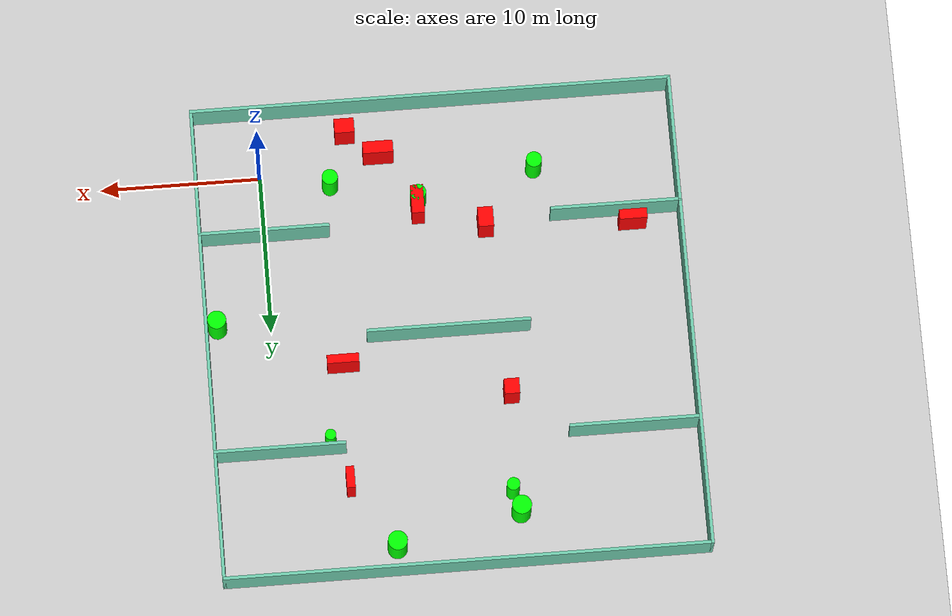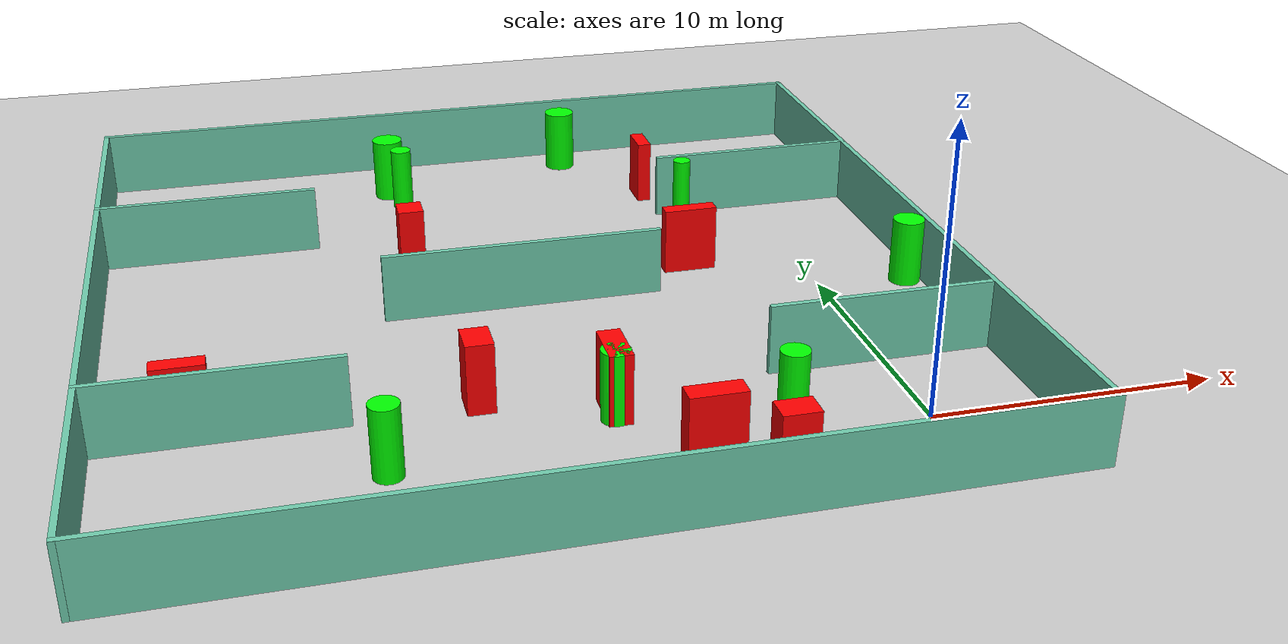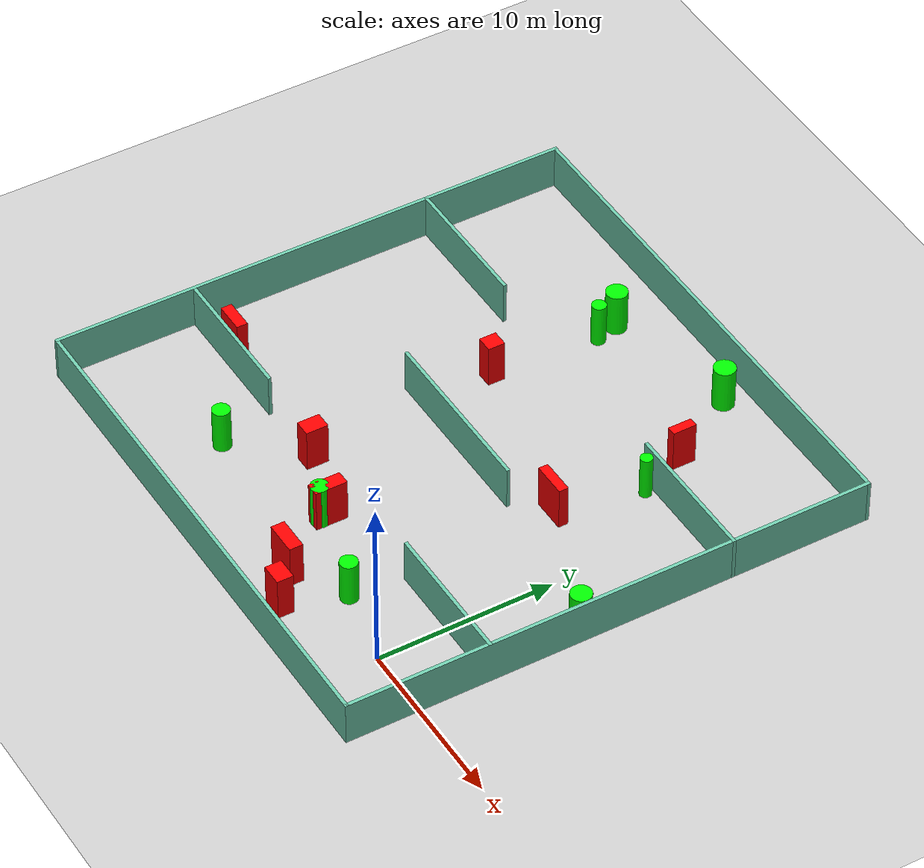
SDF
<sdf version="1.7">
 <world name="default">
  <light name="sun" type="directional">
   <pose>0 0 10 0 -0 0</pose>
   <diffuse>0.8 0.8 0.8 1</diffuse>
   <specular>0.2 0.2 0.2 1</specular>
   <attenuation>
    <range>1000</range>
    <constant>0.9</constant>
    <linear>0.01</linear>
    <quadratic>0.001</quadratic>
   </attenuation>
   <direction>-0.5 0.1 -0.9</direction>
   <spot><inner_angle>0</inner_angle><outer_angle>0</outer_angle><falloff>0</falloff></spot>
  </light>
  <model name="ground_plane">
   <static>1</static>
   <link name="link">
    <collision name="collision">
     <geometry><plane><normal>0 0 1</normal><size>100 100</size></plane></geometry>
     <surface>
      <contact><collide_bitmask>65535</collide_bitmask></contact>
      <friction><ode><mu>100</mu><mu2>50</mu2></ode></friction>
     </surface>
    </collision>
    <visual name="visual">
     <cast_shadows>0</cast_shadows>
     <geometry><plane><normal>0 0 1</normal><size>100 100</size></plane></geometry>
     <material>
      <script><uri>file://media/materials/scripts/gazebo.material</uri><name>Gazebo/Grey</name></script>
     </material>
    </visual>
   </link>
  </model>
  <gravity>0 0 -9.8</gravity>
  <magnetic_field>6e-06 2.3e-05 -4.2e-05</magnetic_field>
  <atmosphere type="adiabatic"/>
  <physics type="ode">
   <max_step_size>0.001</max_step_size>
   <real_time_factor>1</real_time_factor>
   <real_time_update_rate>1000</real_time_update_rate>
  </physics>
  <scene><ambient>0.4 0.4 0.4 1</ambient><background>0.7 0.7 0.7 1</background><shadows>1</shadows></scene>
  <spherical_coordinates>
   <surface_model>EARTH_WGS84</surface_model>
   <latitude_deg>0</latitude_deg>
   <longitude_deg>0</longitude_deg>
   <elevation>0</elevation>
   <heading_deg>0</heading_deg>
  </spherical_coordinates>
  <model name="my_base_walls">
   <link name="Wall_10">
    <collision name="Wall_10_Collision">
     <geometry><box><size>8.2 0.2 2.5</size></box></geometry>
     <pose>0 0 1.25 0 -0 0</pose>
    </collision>
    <visual name="Wall_10_Visual">
     <pose>0 0 1.25 0 -0 0</pose>
     <geometry><box><size>8.2 0.2 2.5</size></box></geometry>
     <material>
      <script><uri>file://media/materials/scripts/gazebo.material</uri><name>Gazebo/Grey</name></script>
      <ambient>0.435294 0.796078 0.67451 1</ambient>
     </material>
     <meta><layer>0</layer></meta>
    </visual>
    <pose>-11 -7 0 0 -0 0</pose>
   </link>
   <link name="Wall_12">
    <collision name="Wall_12_Collision">
     <geometry><box><size>8.2 0.2 2.5</size></box></geometry>
     <pose>0 0 1.25 0 -0 0</pose>
    </collision>
    <visual name="Wall_12_Visual">
     <pose>0 0 1.25 0 -0 0</pose>
     <geometry><box><size>8.2 0.2 2.5</size></box></geometry>
     <material>
      <script><uri>file://media/materials/scripts/gazebo.material</uri><name>Gazebo/Grey</name></script>
      <ambient>0.435294 0.796078 0.67451 1</ambient>
     </material>
     <meta><layer>0</layer></meta>
    </visual>
    <pose>-11 7 0 0 -0 0</pose>
   </link>
   <link name="Wall_14">
    <collision name="Wall_14_Collision">
     <geometry><box><size>8.2 0.2 2.5</size></box></geometry>
     <pose>0 0 1.25 0 -0 0</pose>
    </collision>
    <visual name="Wall_14_Visual">
     <pose>0 0 1.25 0 -0 0</pose>
     <geometry><box><size>8.2 0.2 2.5</size></box></geometry>
     <material>
      <script><uri>file://media/materials/scripts/gazebo.material</uri><name>Gazebo/Grey</name></script>
      <ambient>0.435294 0.796078 0.67451 1</ambient>
     </material>
     <meta><layer>0</layer></meta>
    </visual>
    <pose>11 7 0 0 -0 3.14159</pose>
   </link>
   <link name="Wall_16">
    <collision name="Wall_16_Collision">
     <geometry><box><size>10.2 0.2 2.5</size></box></geometry>
     <pose>0 0 1.25 0 -0 0</pose>
    </collision>
    <visual name="Wall_16_Visual">
     <pose>0 0 1.25 0 -0 0</pose>
     <geometry><box><size>10.2 0.2 2.5</size></box></geometry>
     <material>
      <script><uri>file://media/materials/scripts/gazebo.material</uri><name>Gazebo/Grey</name></script>
      <ambient>0.435294 0.796078 0.67451 1</ambient>
     </material>
     <meta><layer>0</layer></meta>
    </visual>
    <pose>0 0 0 0 -0 3.14159</pose>
   </link>
   <link name="Wall_2">
    <collision name="Wall_2_Collision">
     <geometry><box><size>30.2 0.2 2.5</size></box></geometry>
     <pose>0 0 1.25 0 -0 0</pose>
    </collision>
    <visual name="Wall_2_Visual">
     <pose>0 0 1.25 0 -0 0</pose>
     <geometry><box><size>30.2 0.2 2.5</size></box></geometry>
     <material>
      <script><uri>file://media/materials/scripts/gazebo.material</uri><name>Gazebo/Grey</name></script>
      <ambient>0.435294 0.796078 0.67451 1</ambient>
     </material>
     <meta><layer>0</layer></meta>
    </visual>
    <pose>0 -15 0 0 -0 3.14159</pose>
   </link>
   <link name="Wall_3">
    <collision name="Wall_3_Collision">
     <geometry><box><size>30.2 0.2 2.5</size></box></geometry>
     <pose>0 0 1.25 0 -0 0</pose>
    </collision>
    <visual name="Wall_3_Visual">
     <pose>0 0 1.25 0 -0 0</pose>
     <geometry><box><size>30.2 0.2 2.5</size></box></geometry>
     <material>
      <script><uri>file://media/materials/scripts/gazebo.material</uri><name>Gazebo/Grey</name></script>
      <ambient>0.435294 0.796078 0.67451 1</ambient>
     </material>
     <meta><layer>0</layer></meta>
    </visual>
    <pose>-15 0 0 0 -0 1.5708</pose>
   </link>
   <link name="Wall_4">
    <collision name="Wall_4_Collision">
     <geometry><box><size>30.2 0.2 2.5</size></box></geometry>
     <pose>0 0 1.25 0 -0 0</pose>
    </collision>
    <visual name="Wall_4_Visual">
     <pose>0 0 1.25 0 -0 0</pose>
     <geometry><box><size>30.2 0.2 2.5</size></box></geometry>
     <material>
      <script><uri>file://media/materials/scripts/gazebo.material</uri><name>Gazebo/Grey</name></script>
      <ambient>0.435294 0.796078 0.67451 1</ambient>
     </material>
     <meta><layer>0</layer></meta>
    </visual>
    <pose>0 15 0 0 -0 0</pose>
   </link>
   <link name="Wall_6">
    <collision name="Wall_6_Collision">
     <geometry><box><size>30.2 0.2 2.5</size></box></geometry>
     <pose>0 0 1.25 0 -0 0</pose>
    </collision>
    <visual name="Wall_6_Visual">
     <pose>0 0 1.25 0 -0 0</pose>
     <geometry><box><size>30.2 0.2 2.5</size></box></geometry>
     <material>
      <script><uri>file://media/materials/scripts/gazebo.material</uri><name>Gazebo/Grey</name></script>
      <ambient>0.435294 0.796078 0.67451 1</ambient>
     </material>
     <meta><layer>0</layer></meta>
    </visual>
    <pose>15 0 0 0 -0 1.5708</pose>
   </link>
   <link name="Wall_8">
    <collision name="Wall_8_Collision">
     <geometry><box><size>8.2 0.2 2.5</size></box></geometry>
     <pose>0 0 1.25 0 -0 0</pose>
    </collision>
    <visual name="Wall_8_Visual">
     <pose>0 0 1.25 0 -0 0</pose>
     <geometry><box><size>8.2 0.2 2.5</size></box></geometry>
     <material>
      <script><uri>file://media/materials/scripts/gazebo.material</uri><name>Gazebo/Grey</name></script>
      <ambient>0.435294 0.796078 0.67451 1</ambient>
     </material>
     <meta><layer>0</layer></meta>
    </visual>
    <pose>11 -7 0 0 -0 3.14159</pose>
   </link>
   <static>1</static>
   <pose>-11 11 0 0 -0 0</pose>
  </model>
  <model name="cylinder1">
   <static>1</static>
   <link name="link">
    <inertial>
     <mass>1</mass>
     <inertia><ixx>0.5</ixx><ixy>0</ixy><ixz>0</ixz><iyy>0.5</iyy><iyz>0</iyz><izz>1</izz></inertia>
    </inertial>
    <collision name="collision">
     <geometry><cylinder><radius>0.6086497156854611</radius><length>2.5</length></cylinder></geometry>
    </collision>
    <visual name="visual">
     <geometry><cylinder><radius>0.6086497156854611</radius><length>2.5</length></cylinder></geometry>
     <material>
      <ambient>0 1 0 1</ambient>
      <diffuse>0 1 0 1</diffuse>
      <specular>0.1 0.1 0.1 1</specular>
      <emissive>0 0 0 0</emissive>
     </material>
    </visual>
   </link>
   <pose>-6.786721841759054 24.430729588628953 1.25 0 0 0</pose>
  </model>
  <model name="cylinder2">
   <static>1</static>
   <link name="link">
    <inertial>
     <mass>1</mass>
     <inertia><ixx>0.5</ixx><ixy>0</ixy><ixz>0</ixz><iyy>0.5</iyy><iyz>0</iyz><izz>1</izz></inertia>
    </inertial>
    <collision name="collision">
     <geometry><cylinder><radius>0.49719508035430804</radius><length>2.5</length></cylinder></geometry>
    </collision>
    <visual name="visual">
     <geometry><cylinder><radius>0.49719508035430804</radius><length>2.5</length></cylinder></geometry>
     <material>
      <ambient>0 1 0 1</ambient>
      <diffuse>0 1 0 1</diffuse>
      <specular>0.1 0.1 0.1 1</specular>
      <emissive>0 0 0 0</emissive>
     </material>
    </visual>
   </link>
   <pose>-4.357869647042778 0.9171476420715177 1.25 0 0 0</pose>
  </model>
  <model name="cylinder3">
   <static>1</static>
   <link name="link">
    <inertial>
     <mass>1</mass>
     <inertia><ixx>0.5</ixx><ixy>0</ixy><ixz>0</ixz><iyy>0.5</iyy><iyz>0</iyz><izz>1</izz></inertia>
    </inertial>
    <collision name="collision">
     <geometry><cylinder><radius>0.4062370322577492</radius><length>2.5</length></cylinder></geometry>
    </collision>
    <visual name="visual">
     <geometry><cylinder><radius>0.4062370322577492</radius><length>2.5</length></cylinder></geometry>
     <material>
      <ambient>0 1 0 1</ambient>
      <diffuse>0 1 0 1</diffuse>
      <specular>0.1 0.1 0.1 1</specular>
      <emissive>0 0 0 0</emissive>
     </material>
    </visual>
   </link>
   <pose>-14.144343708823314 21.428683885774632 1.25 0 0 0</pose>
  </model>
  <model name="cylinder4">
   <static>1</static>
   <link name="link">
    <inertial>
     <mass>1</mass>
     <inertia><ixx>0.5</ixx><ixy>0</ixy><ixz>0</ixz><iyy>0.5</iyy><iyz>0</iyz><izz>1</izz></inertia>
    </inertial>
    <collision name="collision">
     <geometry><cylinder><radius>0.3391796319214715</radius><length>2.5</length></cylinder></geometry>
    </collision>
    <visual name="visual">
     <geometry><cylinder><radius>0.3391796319214715</radius><length>2.5</length></cylinder></geometry>
     <material>
      <ambient>0 1 0 1</ambient>
      <diffuse>0 1 0 1</diffuse>
      <specular>0.1 0.1 0.1 1</specular>
      <emissive>0 0 0 0</emissive>
     </material>
    </visual>
   </link>
   <pose>-3.180612873212393 17.44715118714551 1.25 0 0 0</pose>
  </model>
  <model name="cylinder5">
   <static>1</static>
   <link name="link">
    <inertial>
     <mass>1</mass>
     <inertia><ixx>0.5</ixx><ixy>0</ixy><ixz>0</ixz><iyy>0.5</iyy><iyz>0</iyz><izz>1</izz></inertia>
    </inertial>
    <collision name="collision">
     <geometry><cylinder><radius>0.4973616427185854</radius><length>2.5</length></cylinder></geometry>
    </collision>
    <visual name="visual">
     <geometry><cylinder><radius>0.4973616427185854</radius><length>2.5</length></cylinder></geometry>
     <material>
      <ambient>0 1 0 1</ambient>
      <diffuse>0 1 0 1</diffuse>
      <specular>0.1 0.1 0.1 1</specular>
      <emissive>0 0 0 0</emissive>
     </material>
    </visual>
   </link>
   <pose>-17.14578546429446 0.7564457811827028 1.25 0 0 0</pose>
  </model>
  <model name="cylinder6">
   <static>1</static>
   <link name="link">
    <inertial>
     <mass>1</mass>
     <inertia><ixx>0.5</ixx><ixy>0</ixy><ixz>0</ixz><iyy>0.5</iyy><iyz>0</iyz><izz>1</izz></inertia>
    </inertial>
    <collision name="collision">
     <geometry><cylinder><radius>0.6036332974925681</radius><length>2.5</length></cylinder></geometry>
    </collision>
    <visual name="visual">
     <geometry><cylinder><radius>0.6036332974925681</radius><length>2.5</length></cylinder></geometry>
     <material>
      <ambient>0 1 0 1</ambient>
      <diffuse>0 1 0 1</diffuse>
      <specular>0.1 0.1 0.1 1</specular>
      <emissive>0 0 0 0</emissive>
     </material>
    </visual>
   </link>
   <pose>-14.551821708774352 22.768353676822688 1.25 0 0 0</pose>
  </model>
  <model name="cylinder7">
   <static>1</static>
   <link name="link">
    <inertial>
     <mass>1</mass>
     <inertia><ixx>0.5</ixx><ixy>0</ixy><ixz>0</ixz><iyy>0.5</iyy><iyz>0</iyz><izz>1</izz></inertia>
    </inertial>
    <collision name="collision">
     <geometry><cylinder><radius>0.5000422155493041</radius><length>2.5</length></cylinder></geometry>
    </collision>
    <visual name="visual">
     <geometry><cylinder><radius>0.5000422155493041</radius><length>2.5</length></cylinder></geometry>
     <material>
      <ambient>0 1 0 1</ambient>
      <diffuse>0 1 0 1</diffuse>
      <specular>0.1 0.1 0.1 1</specular>
      <emissive>0 0 0 0</emissive>
     </material>
    </visual>
   </link>
   <pose>-9.765922101454917 2.3180721988617385 1.25 0 0 0</pose>
  </model>
  <model name="cylinder8">
   <static>1</static>
   <link name="link">
    <inertial>
     <mass>1</mass>
     <inertia><ixx>0.5</ixx><ixy>0</ixy><ixz>0</ixz><iyy>0.5</iyy><iyz>0</iyz><izz>1</izz></inertia>
    </inertial>
    <collision name="collision">
     <geometry><cylinder><radius>0.5838804792831354</radius><length>2.5</length></cylinder></geometry>
    </collision>
    <visual name="visual">
     <geometry><cylinder><radius>0.5838804792831354</radius><length>2.5</length></cylinder></geometry>
     <material>
      <ambient>0 1 0 1</ambient>
      <diffuse>0 1 0 1</diffuse>
      <specular>0.1 0.1 0.1 1</specular>
      <emissive>0 0 0 0</emissive>
     </material>
    </visual>
   </link>
   <pose>3.3101716185211387 9.604763070427214 1.25 0 0 0</pose>
  </model>
  <model name="box1">
   <static>1</static>
   <link name="link">
    <inertial>
     <mass>1</mass>
     <inertia><ixx>0.083</ixx><ixy>0</ixy><ixz>0</ixz><iyy>0.083</iyy><iyz>0</iyz><izz>0.083</izz></inertia>
    </inertial>
    <collision name="collision">
     <geometry><box><size>1.7265613658594958 0.6283564776903009 2.5</size></box></geometry>
    </collision>
    <visual name="visual">
     <geometry><box><size>1.7265613658594958 0.6283564776903009 2.5</size></box></geometry>
     <material>
      <ambient>1 0 0 1</ambient>
      <diffuse>1 0 0 1</diffuse>
      <specular>0.1 0.1 0.1 1</specular>
      <emissive>0 0 0 0</emissive>
     </material>
    </visual>
    <sensor name="my_contact" type="contact">
     <contact><collision>box_collision</collision><topic>__default_topic__</topic></contact>
    </sensor>
   </link>
   <pose>-23.011061031654485 4.745534610652612 1.25 0 0 0</pose>
  </model>
  <model name="box2">
   <static>1</static>
   <link name="link">
    <inertial>
     <mass>1</mass>
     <inertia><ixx>0.083</ixx><ixy>0</ixy><ixz>0</ixz><iyy>0.083</iyy><iyz>0</iyz><izz>0.083</izz></inertia>
    </inertial>
    <collision name="collision">
     <geometry><box><size>1.8954558895606481 0.7680497458373914 2.5</size></box></geometry>
    </collision>
    <visual name="visual">
     <geometry><box><size>1.8954558895606481 0.7680497458373914 2.5</size></box></geometry>
     <material>
      <ambient>1 0 0 1</ambient>
      <diffuse>1 0 0 1</diffuse>
      <specular>0.1 0.1 0.1 1</specular>
      <emissive>0 0 0 0</emissive>
     </material>
    </visual>
    <sensor name="my_contact" type="contact">
     <contact><collision>box_collision</collision><topic>__default_topic__</topic></contact>
    </sensor>
   </link>
   <pose>-7.486745579279621 -0.8132679353747063 1.25 0 0 0</pose>
  </model>
  <model name="box3">
   <static>1</static>
   <link name="link">
    <inertial>
     <mass>1</mass>
     <inertia><ixx>0.083</ixx><ixy>0</ixy><ixz>0</ixz><iyy>0.083</iyy><iyz>0</iyz><izz>0.083</izz></inertia>
    </inertial>
    <collision name="collision">
     <geometry><box><size>0.9509982275111775 1.260449302012913 2.5</size></box></geometry>
    </collision>
    <visual name="visual">
     <geometry><box><size>0.9509982275111775 1.260449302012913 2.5</size></box></geometry>
     <material>
      <ambient>1 0 0 1</ambient>
      <diffuse>1 0 0 1</diffuse>
      <specular>0.1 0.1 0.1 1</specular>
      <emissive>0 0 0 0</emissive>
     </material>
    </visual>
    <sensor name="my_contact" type="contact">
     <contact><collision>box_collision</collision><topic>__default_topic__</topic></contact>
    </sensor>
   </link>
   <pose>-13.838098832382311 4.227581578155645 1.25 0 0 0</pose>
  </model>
  <model name="box4">
   <static>1</static>
   <link name="link">
    <inertial>
     <mass>1</mass>
     <inertia><ixx>0.083</ixx><ixy>0</ixy><ixz>0</ixz><iyy>0.083</iyy><iyz>0</iyz><izz>0.083</izz></inertia>
    </inertial>
    <collision name="collision">
     <geometry><box><size>1.9842390135544228 0.5458427876307878 2.5</size></box></geometry>
    </collision>
    <visual name="visual">
     <geometry><box><size>1.9842390135544228 0.5458427876307878 2.5</size></box></geometry>
     <material>
      <ambient>1 0 0 1</ambient>
      <diffuse>1 0 0 1</diffuse>
      <specular>0.1 0.1 0.1 1</specular>
      <emissive>0 0 0 0</emissive>
     </material>
    </visual>
    <sensor name="my_contact" type="contact">
     <contact><collision>box_collision</collision><topic>__default_topic__</topic></contact>
    </sensor>
   </link>
   <pose>-4.2984511113700705 12.658061980052143 1.25 0 0 0</pose>
  </model>
  <model name="box5">
   <static>1</static>
   <link name="link">
    <inertial>
     <mass>1</mass>
     <inertia><ixx>0.083</ixx><ixy>0</ixy><ixz>0</ixz><iyy>0.083</iyy><iyz>0</iyz><izz>0.083</izz></inertia>
    </inertial>
    <collision name="collision">
     <geometry><box><size>0.9427862612838818 0.9719766186231761 2.5</size></box></geometry>
    </collision>
    <visual name="visual">
     <geometry><box><size>0.9427862612838818 0.9719766186231761 2.5</size></box></geometry>
     <material>
      <ambient>1 0 0 1</ambient>
      <diffuse>1 0 0 1</diffuse>
      <specular>0.1 0.1 0.1 1</specular>
      <emissive>0 0 0 0</emissive>
     </material>
    </visual>
    <sensor name="my_contact" type="contact">
     <contact><collision>box_collision</collision><topic>__default_topic__</topic></contact>
    </sensor>
   </link>
   <pose>-14.561291049173835 15.220552076804612 1.25 0 0 0</pose>
  </model>
  <model name="box6">
   <static>1</static>
   <link name="link">
    <inertial>
     <mass>1</mass>
     <inertia><ixx>0.083</ixx><ixy>0</ixy><ixz>0</ixz><iyy>0.083</iyy><iyz>0</iyz><izz>0.083</izz></inertia>
    </inertial>
    <collision name="collision">
     <geometry><box><size>0.7955554800108781 1.8084003684426866 2.5</size></box></geometry>
    </collision>
    <visual name="visual">
     <geometry><box><size>0.7955554800108781 1.8084003684426866 2.5</size></box></geometry>
     <material>
      <ambient>1 0 0 1</ambient>
      <diffuse>1 0 0 1</diffuse>
      <specular>0.1 0.1 0.1 1</specular>
      <emissive>0 0 0 0</emissive>
     </material>
    </visual>
    <sensor name="my_contact" type="contact">
     <contact><collision>box_collision</collision><topic>__default_topic__</topic></contact>
    </sensor>
   </link>
   <pose>-9.694515056676309 2.7538750837400503 1.25 0 0 0</pose>
  </model>
  <model name="box7">
   <static>1</static>
   <link name="link">
    <inertial>
     <mass>1</mass>
     <inertia><ixx>0.083</ixx><ixy>0</ixy><ixz>0</ixz><iyy>0.083</iyy><iyz>0</iyz><izz>0.083</izz></inertia>
    </inertial>
    <collision name="collision">
     <geometry><box><size>1.2463808180556764 0.9256383698423049 2.5</size></box></geometry>
    </collision>
    <visual name="visual">
     <geometry><box><size>1.2463808180556764 0.9256383698423049 2.5</size></box></geometry>
     <material>
      <ambient>1 0 0 1</ambient>
      <diffuse>1 0 0 1</diffuse>
      <specular>0.1 0.1 0.1 1</specular>
      <emissive>0 0 0 0</emissive>
     </material>
    </visual>
    <sensor name="my_contact" type="contact">
     <contact><collision>box_collision</collision><topic>__default_topic__</topic></contact>
    </sensor>
   </link>
   <pose>-5.495026485868044 -2.3628863534685727 1.25 0 0 0</pose>
  </model>
  <model name="box8">
   <static>1</static>
   <link name="link">
    <inertial>
     <mass>1</mass>
     <inertia><ixx>0.083</ixx><ixy>0</ixy><ixz>0</ixz><iyy>0.083</iyy><iyz>0</iyz><izz>0.083</izz></inertia>
    </inertial>
    <collision name="collision">
     <geometry><box><size>0.5299343963587987 1.3549378330903106 2.5</size></box></geometry>
    </collision>
    <visual name="visual">
     <geometry><box><size>0.5299343963587987 1.3549378330903106 2.5</size></box></geometry>
     <material>
      <ambient>1 0 0 1</ambient>
      <diffuse>1 0 0 1</diffuse>
      <specular>0.1 0.1 0.1 1</specular>
      <emissive>0 0 0 0</emissive>
     </material>
    </visual>
    <sensor name="my_contact" type="contact">
     <contact><collision>box_collision</collision><topic>__default_topic__</topic></contact>
    </sensor>
   </link>
   <pose>-4.195004534271584 20.216314257493412 1.25 0 0 0</pose>
  </model>
 </world>
</sdf>
